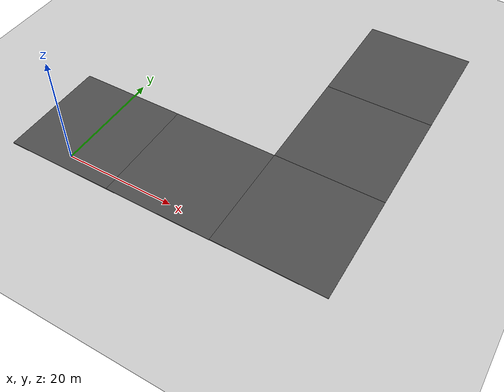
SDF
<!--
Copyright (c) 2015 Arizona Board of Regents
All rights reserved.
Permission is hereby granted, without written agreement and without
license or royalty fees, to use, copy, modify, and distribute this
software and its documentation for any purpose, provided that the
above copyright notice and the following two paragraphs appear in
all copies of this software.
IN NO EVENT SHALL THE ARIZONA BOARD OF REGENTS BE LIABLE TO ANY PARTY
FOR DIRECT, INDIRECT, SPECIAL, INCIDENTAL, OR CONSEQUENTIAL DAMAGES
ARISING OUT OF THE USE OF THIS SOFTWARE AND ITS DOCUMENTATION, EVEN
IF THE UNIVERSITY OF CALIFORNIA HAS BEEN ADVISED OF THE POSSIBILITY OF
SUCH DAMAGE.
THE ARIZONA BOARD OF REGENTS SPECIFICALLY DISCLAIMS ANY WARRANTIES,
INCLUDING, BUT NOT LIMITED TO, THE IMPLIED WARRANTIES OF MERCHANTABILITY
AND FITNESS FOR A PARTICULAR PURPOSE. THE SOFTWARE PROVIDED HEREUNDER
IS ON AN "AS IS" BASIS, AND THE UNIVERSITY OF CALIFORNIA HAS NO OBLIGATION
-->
<sdf version="1.4">
 <world name="default">
  <model name="ground_plane">
   <static>1</static>
   <link name="link">
    <collision name="collision">
     <geometry><plane><normal>0 0 1</normal><size>100 100</size></plane></geometry>
     <surface><friction><ode><mu>150</mu><mu2>100</mu2></ode></friction></surface>
    </collision>
    <visual name="visual">
     <cast_shadows>0</cast_shadows>
     <geometry><plane><normal>0 0 1</normal><size>100 100</size></plane></geometry>
     <material>
      <script><uri>file://media/materials/scripts/gazebo.material</uri><name>Gazebo/Grey</name></script>
     </material>
    </visual>
    <velocity_decay><linear>0</linear><angular>0</angular></velocity_decay>
   </link>
  </model>
  <light name="sun" type="directional">
   <pose>0 0 10 0 -0 0</pose>
   <diffuse>0.8 0.8 0.8 1</diffuse>
   <specular>0.2 0.2 0.2 1</specular>
   <attenuation>
    <range>1000</range>
    <constant>0.9</constant>
    <linear>0.01</linear>
    <quadratic>0.001</quadratic>
   </attenuation>
   <direction>-0.5 0.1 -0.9</direction>
  </light>
  <physics type="ode">
   <max_step_size>0.001</max_step_size>
   <real_time_factor>1</real_time_factor>
   <real_time_update_rate>1000</real_time_update_rate>
   <gravity>0 0 -9.8</gravity>
  </physics>
  <scene><ambient>0.4 0.4 0.4 1</ambient><background>0.7 0.7 0.7 1</background><shadows>1</shadows></scene>
  <spherical_coordinates>
   <surface_model>EARTH_WGS84</surface_model>
   <latitude_deg>0</latitude_deg>
   <longitude_deg>0</longitude_deg>
   <elevation>0</elevation>
   <heading_deg>0</heading_deg>
  </spherical_coordinates>
  <model name="asphalt_plane_3">
   <static>1</static>
   <link name="link">
    <collision name="collision"><geometry><box><size>20 20 0.1</size></box></geometry></collision>
    <visual name="visual">
     <cast_shadows>0</cast_shadows>
     <geometry><box><size>20 20 0.1</size></box></geometry>
     <material>
      <script>
       <uri>model://asphalt_plane/materials/scripts</uri>
       <uri>model://asphalt_plane/materials/textures</uri>
       <name>vrc/asphalt</name>
      </script>
     </material>
    </visual>
    <velocity_decay><linear>0</linear><angular>0</angular></velocity_decay>
   </link>
   <pose>-0.579832 7.43849 0 0 -0 0</pose>
  </model>
  <model name="asphalt_plane_4">
   <static>1</static>
   <link name="link">
    <collision name="collision"><geometry><box><size>20 20 0.1</size></box></geometry></collision>
    <visual name="visual">
     <cast_shadows>0</cast_shadows>
     <geometry><box><size>20 20 0.1</size></box></geometry>
     <material>
      <script>
       <uri>model://asphalt_plane/materials/scripts</uri>
       <uri>model://asphalt_plane/materials/textures</uri>
       <name>vrc/asphalt</name>
      </script>
     </material>
    </visual>
    <velocity_decay><linear>0</linear><angular>0</angular></velocity_decay>
   </link>
   <pose>19 7.43486 0 0 -0 0</pose>
  </model>
  <model name="asphalt_plane_6">
   <static>1</static>
   <link name="link">
    <collision name="collision"><geometry><box><size>20 20 0.1</size></box></geometry></collision>
    <visual name="visual">
     <cast_shadows>0</cast_shadows>
     <geometry><box><size>20 20 0.1</size></box></geometry>
     <material>
      <script>
       <uri>model://asphalt_plane/materials/scripts</uri>
       <uri>model://asphalt_plane/materials/textures</uri>
       <name>vrc/asphalt</name>
      </script>
     </material>
    </visual>
    <velocity_decay><linear>0</linear><angular>0</angular></velocity_decay>
   </link>
   <pose>39 7.49528 0 0 -0 0</pose>
  </model>
  <model name="asphalt_plane_7">
   <static>1</static>
   <link name="link">
    <collision name="collision"><geometry><box><size>20 20 0.1</size></box></geometry></collision>
    <visual name="visual">
     <cast_shadows>0</cast_shadows>
     <geometry><box><size>20 20 0.1</size></box></geometry>
     <material>
      <script>
       <uri>model://asphalt_plane/materials/scripts</uri>
       <uri>model://asphalt_plane/materials/textures</uri>
       <name>vrc/asphalt</name>
      </script>
     </material>
    </visual>
    <velocity_decay><linear>0</linear><angular>0</angular></velocity_decay>
   </link>
   <pose>39 27.4494 0 0 -0 0</pose>
  </model>
  <model name="asphalt_plane_9">
   <static>1</static>
   <link name="link">
    <collision name="collision"><geometry><box><size>20 20 0.1</size></box></geometry></collision>
    <visual name="visual">
     <cast_shadows>0</cast_shadows>
     <geometry><box><size>20 20 0.1</size></box></geometry>
     <material>
      <script>
       <uri>model://asphalt_plane/materials/scripts</uri>
       <uri>model://asphalt_plane/materials/textures</uri>
       <name>vrc/asphalt</name>
      </script>
     </material>
    </visual>
    <velocity_decay><linear>0</linear><angular>0</angular></velocity_decay>
   </link>
   <pose>39 47.4433 0 0 -0 0</pose>
  </model>
 </world>
</sdf>
